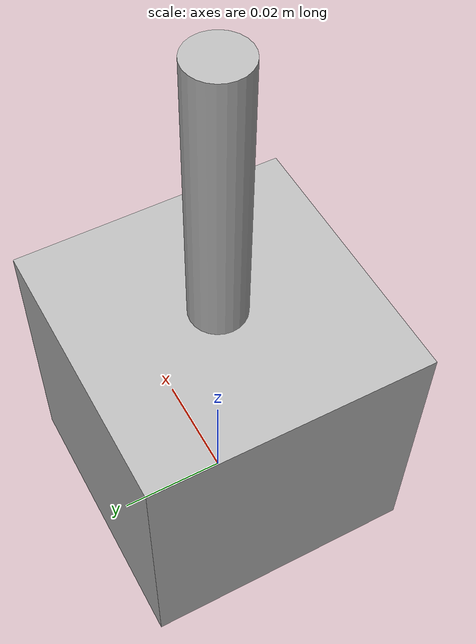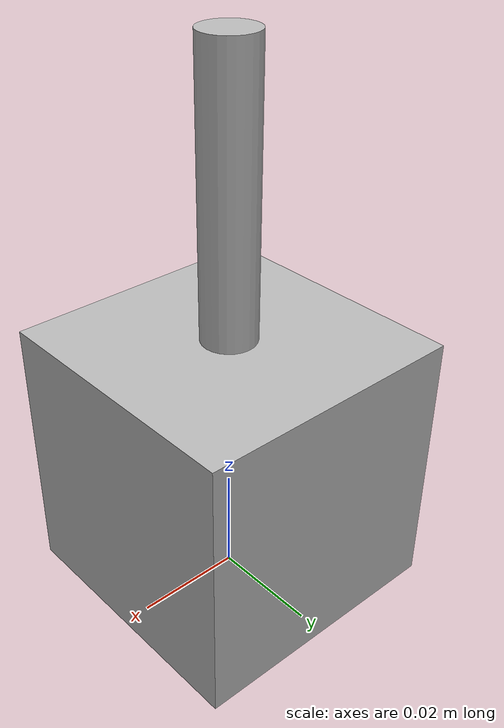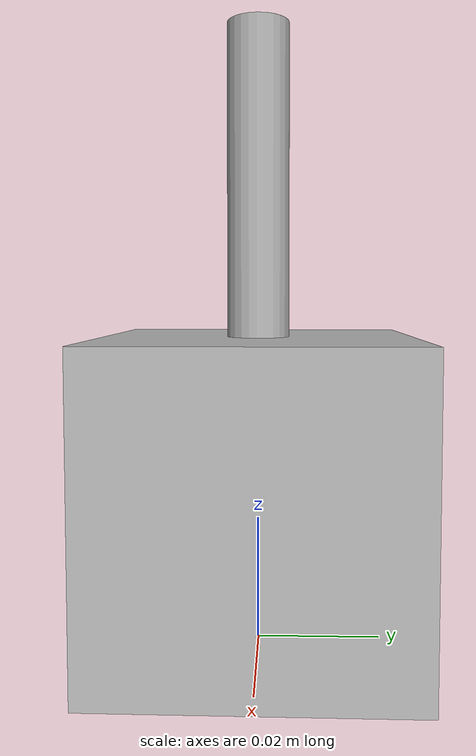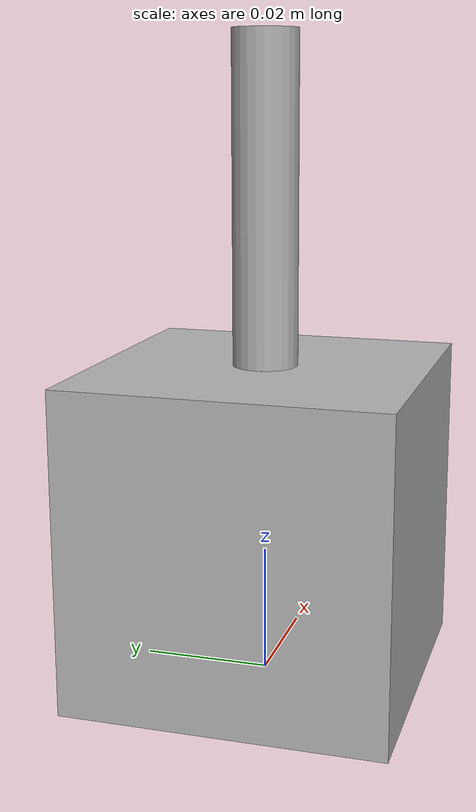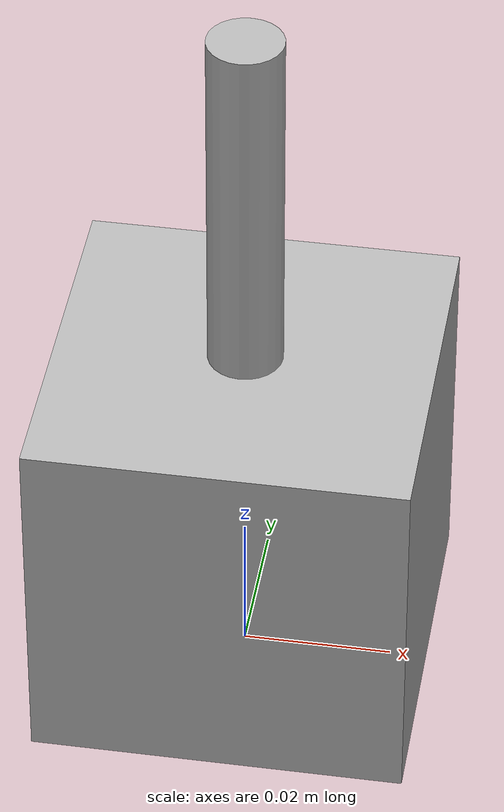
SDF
<?xml version="1.0" ?>
<sdf version="1.5">
<model name="wirelessTransmitter">
      <static>true</static>
      <pose>0 0 0.025 0 0 0</pose>
      <link name="link">
        <inertial>
          <mass>0.1</mass>
        </inertial>

        <visual name="base">
          <geometry>
            <box>
              <size>.05 .05 .05</size>
            </box>
          </geometry>
        </visual>

        <visual name="antenna">
        <pose>0 0 .04 0 0 0</pose>
          <geometry>
            <cylinder>
              <radius>.005</radius>
              <length>.07</length>
            </cylinder>
          </geometry>
        </visual>

        <sensor name="wirelessTransmitter" type="wireless_transmitter">
          <always_on>1</always_on>
          <update_rate>1</update_rate>
          <visualize>true</visualize>
          <transceiver>
            <essid>osrf</essid>
            <frequency>2442.0</frequency>
            <power>14.5</power>
            <gain>2.6</gain>
          </transceiver>
        </sensor>
      </link>
    </model>
</sdf>
